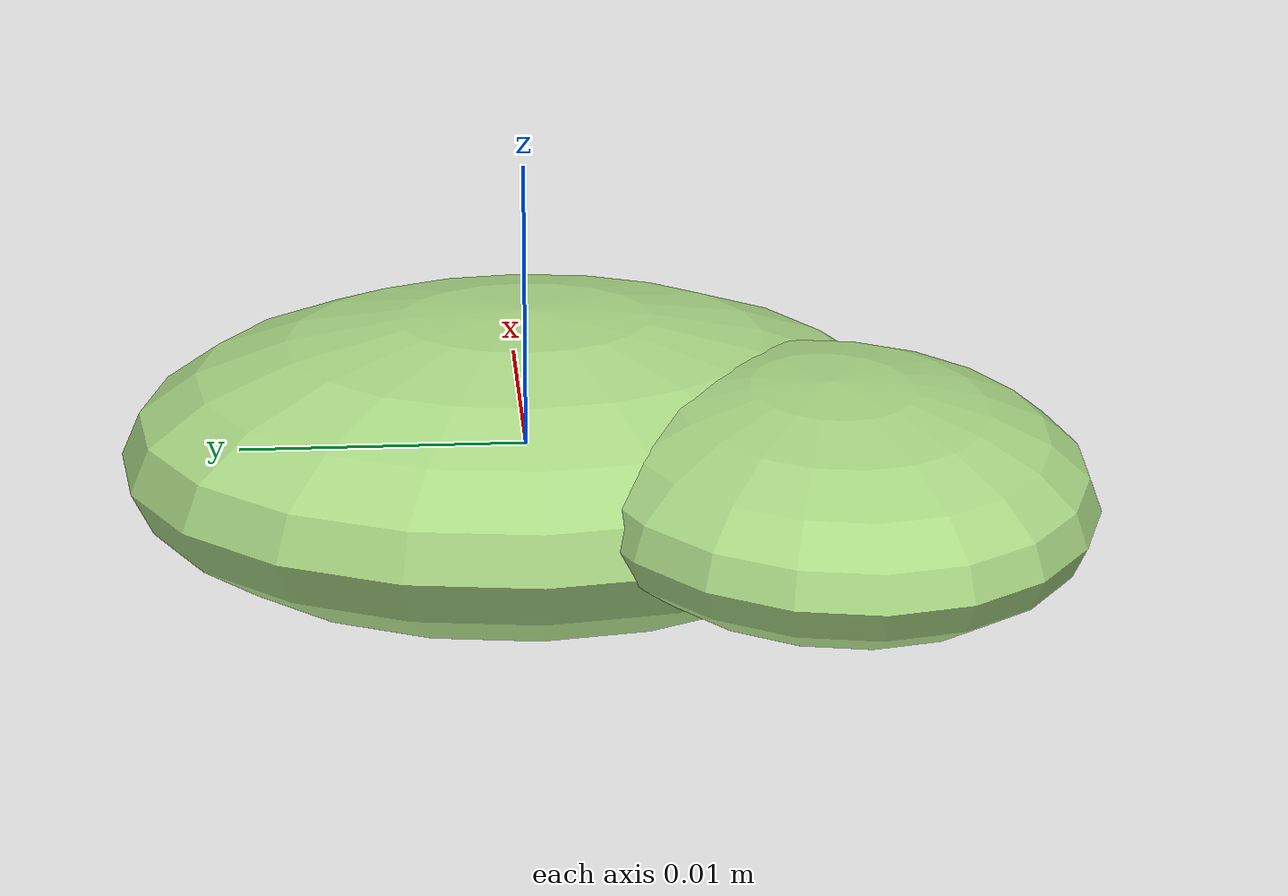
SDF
<?xml version="1.0" ?>
<!-- |    This document was autogenerated by xmacro from data/veggie_template/veggie_base.sdf.xacro  | -->
<!-- |    EDITING THIS FILE BY HAND IS NOT RECOMMENDED                                               | -->
<sdf version="1.8">
	<!-- Parameters -->
	<!-- Base -->
	<!-- Joint 0 -->
	<!-- Link 1 -->
	<!-- Joint 1 -->
	<!-- Link 2 -->
	<!-- Primitives -->
	<!-- All dimensions are half -->
	<!-- Object -->
	<model name="veggie">
		<!-- link0 -->
		<link name="link0">
			<inertial>
				<mass>0.003552178548550969</mass>
				<inertia>
					<ixx>1.5726243634309166e-07</ixx>
					<ixy>0</ixy>
					<ixz>0</ixz>
					<iyy>1.249522721042871e-07</iyy>
					<iyz>0</iyz>
					<izz>2.4813179646564984e-07</izz>
				</inertia>
			</inertial>
			<visual name="link0_visual">
				<pose>0 0 0 0 0 0</pose>
				<geometry>
					<ellipsoid>
						<radii>0.012324522359539083 0.014048957804349074 0.004897686214011568</radii>
					</ellipsoid>
				</geometry>
				<material>
					<ambient>0.659 0.839 0.514 1</ambient>
					<diffuse>0.659 0.839 0.514 1</diffuse>
					<specular>0 0 0 0</specular>
					<emissive>0 0 0 1</emissive>
				</material>
			</visual>
			<collision name="link0_collision">
				<pose>0 0 0 0 0 0 </pose>
				<geometry>
					<ellipsoid>
						<radii>0.012324522359539083 0.014048957804349074 0.004897686214011568</radii>
					</ellipsoid>
				</geometry>
			</collision>
		</link>
		<!-- link1 -->
		<joint name="joint0" type="fixed">
			<pose relative_to="link0">-0.006363051120475798 -0.009644708624030789 0.0008672691556709844 0.0 0.0 0.0</pose>
			<parent>link0</parent>
			<child>link1</child>
		</joint>
		<link name="link1">
			<pose relative_to="joint0">0 0 0 0 0 0</pose>
			<inertial>
				<mass>0.0013027540494103956</mass>
				<inertia>
					<ixx>2.2527796586837965e-08</ixx>
					<ixy>0</ixy>
					<ixz>0</ixz>
					<iyy>3.147738369858763e-08</iyy>
					<iyz>0</iyz>
					<izz>4.7796086133060665e-08</izz>
				</inertia>
			</inertial>
			<visual name="link1_visual">
				<pose>0 0 0 0 0 0</pose>
				<geometry>
					<ellipsoid>
						<radii>0.010435305430296145 0.008634053409748075 0.0034518579158335653</radii>
					</ellipsoid>
				</geometry>
				<material>
					<ambient>0.659 0.839 0.514 1</ambient>
					<diffuse>0.659 0.839 0.514 1</diffuse>
					<specular>0 0 0 0</specular>
					<emissive>0 0 0 1</emissive>
				</material>
			</visual>
			<collision name="link1_collision">
				<pose>0 0 0 0 0 0 </pose>
				<geometry>
					<ellipsoid>
						<radii>0.010435305430296145 0.008634053409748075 0.0034518579158335653</radii>
					</ellipsoid>
				</geometry>
			</collision>
		</link>
		<!-- link2 -->
	</model>
</sdf>
